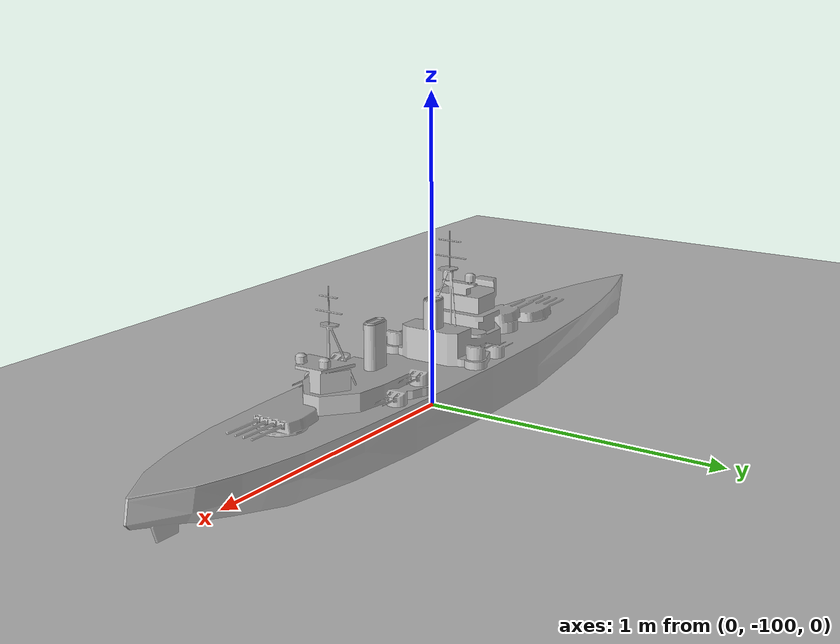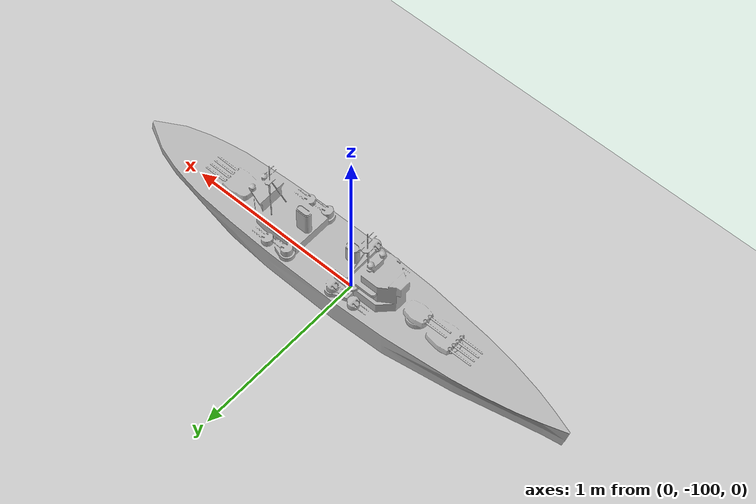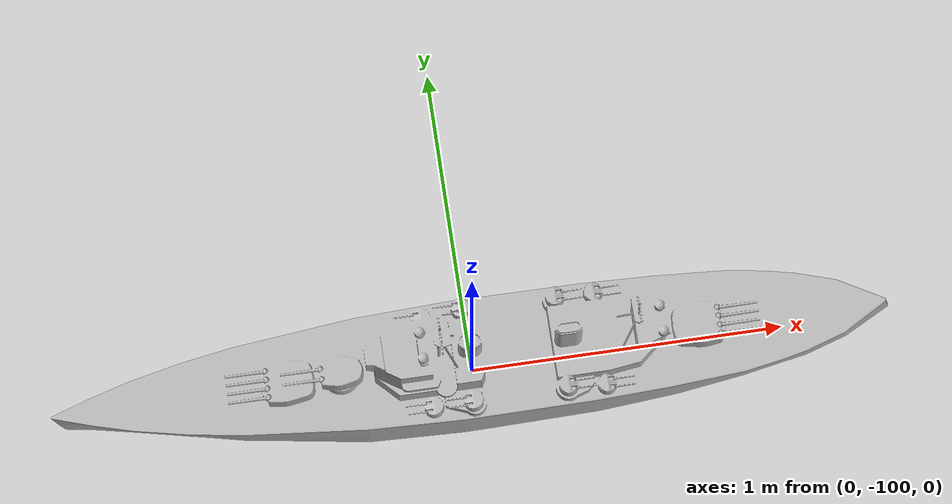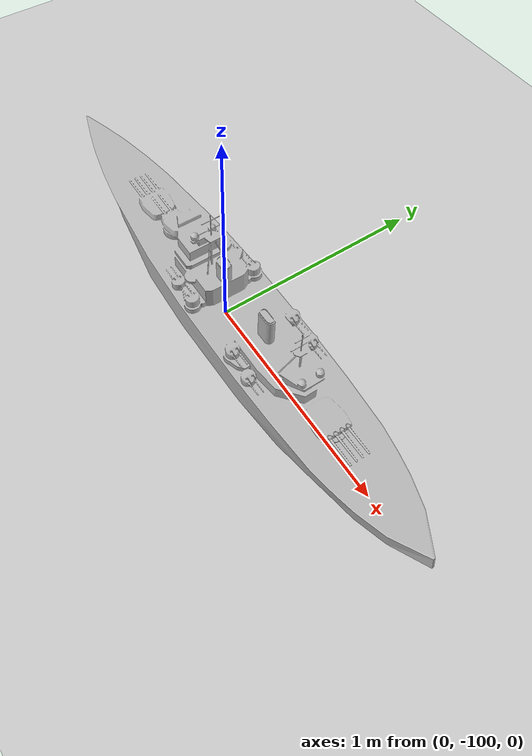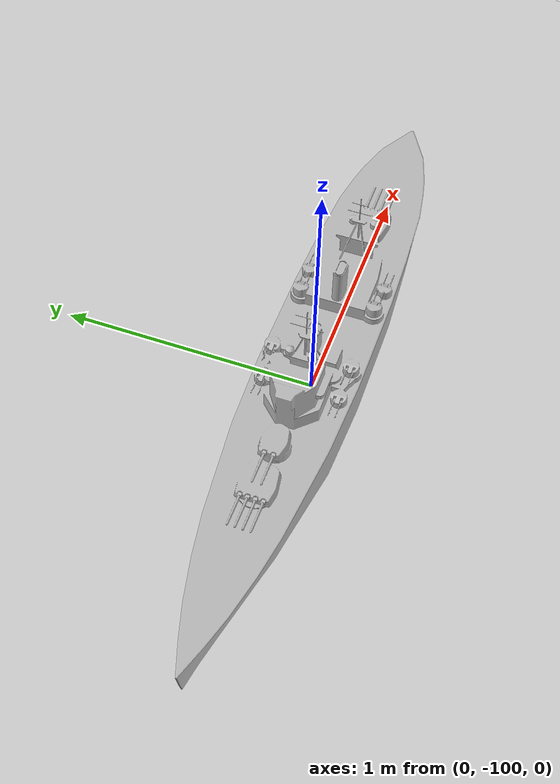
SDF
<?xml version="1.0" ?>

<sdf version="1.6">
  <world name="default">
    <gui>
      <camera name="user_camera">
        <pose>0 5 1 0 0.2 -1.5707</pose>
      </camera>
      <plugin name="keyboard" filename="libKeyboardGUIPlugin.so"/>
    </gui>
    <physics type="ode">
      <ode>
        <solver>
          <type>quick</type>
          <iters>100</iters>
          <sor>1.0</sor>
        </solver>
        <constraints>
          <cfm>0.0</cfm>
          <erp>0.2</erp>
          <contact_max_correcting_vel>0.1</contact_max_correcting_vel>
          <contact_surface_layer>0.0</contact_surface_layer>
        </constraints>
      </ode>
      <real_time_update_rate>400</real_time_update_rate>
      <max_step_size>0.0025</max_step_size>
    </physics>

    <include>
      <uri>model://sun</uri>
      <pose>0 0 0 -0.523598776 0 0</pose>
    </include>

    <model name="ground_plane">
      <static>true</static>
      <link name="link">
        <collision name="collision">
          <geometry>
            <plane>
              <normal>0 0 1</normal>
              <size>5000 5000</size>
            </plane>
          </geometry>
          <surface>
            <friction>
              <ode>
                <mu>1</mu>
                <mu2>1</mu2>
              </ode>
            </friction>
          </surface>
        </collision>
        <visual name="runway">
          <pose>000 0 0.005 0 0 -1.5707</pose>
          <cast_shadows>false</cast_shadows>
          <geometry>
            <plane>
              <normal>0 0 1</normal>
              <size>1829 45</size>
            </plane>
          </geometry>
          <material>
            <script>
              <uri>file://media/materials/scripts/gazebo.material</uri>
              <name>Gazebo/Runway</name>
            </script>
          </material>
        </visual>

        <visual name="grass">
          <pose>0 0 -0.1 0 0 0</pose>
          <cast_shadows>false</cast_shadows>
          <geometry>
            <plane>
              <normal>0 0 1</normal>
              <size>5000 5000</size>
            </plane>
          </geometry>
          <material>
            <script>
              <uri>file://media/materials/scripts/gazebo.material</uri>
              <name>Gazebo/Grass</name>
            </script>
          </material>
        </visual>

      </link>
    </model>

    <model name="battleship">
      <pose>0 -100 0 0 0 0</pose>
      <include>
        <uri>model://battleship</uri>
        <pose>0 0 0 0 0 0</pose>
      </include>
    </model>
  </world>
</sdf>

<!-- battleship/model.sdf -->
<sdf version="1.6">
  <model name="battleship">
    <pose>0 0 0 0 0 0</pose>

    <link name="body">
      <inertial>
        <pose>0 -0.12 0 0 0 0</pose>
        <mass>1.5</mass>
        <inertia>
          <ixx>0.083137104</ixx>
          <ixy>0</ixy>
          <iyy>0.387382402</iyy>
          <ixz>0</ixz>
          <iyz>0</iyz>
          <izz>0.469845106</izz>
        </inertia>
      </inertial>
      <visual name="visual">
        <geometry>
          <mesh>
            <uri>model://battleship/meshes/14083_WWII_ship_UK_King_George_V_Class_Battleship_v1_L1.dae</uri>
          </mesh>
        </geometry>
      </visual>
      <collision name="body_collision">
        <geometry>
          <mesh>
            <uri>model://battleship/meshes/14083_WWII_ship_UK_King_George_V_Class_Battleship_v1_L1.dae</uri>
          </mesh>
        </geometry>
      </collision>
      </link>
  </model>
</sdf>
